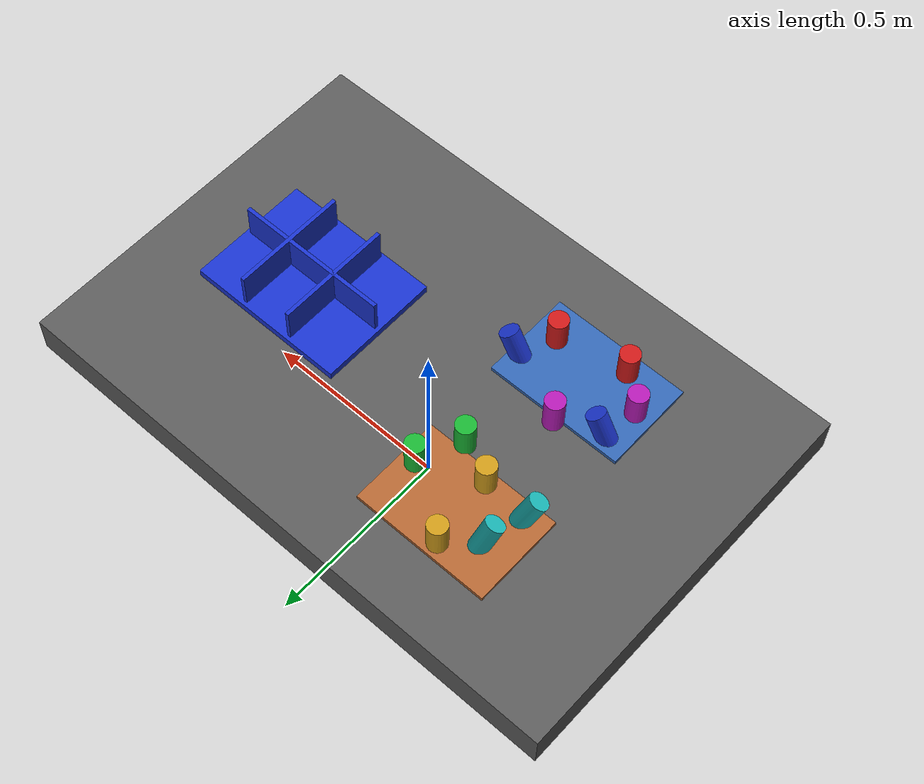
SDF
<?xml version="1.0" ?>
<sdf version="1.9">
  <!-- Standalone M1B scene.  The controller-backed Panda is spawned by the
       existing launch path; this file never alters the frozen M1A cube world. -->
  <world name="industrial_cylinder_v1">
    <physics name="bullet" type="bullet"><max_step_size>0.001</max_step_size><real_time_factor>1.0</real_time_factor></physics>
    <plugin name="gz::sim::systems::Physics" filename="gz-sim-physics-system"><engine><filename>gz-physics-bullet-featherstone-plugin</filename></engine></plugin>
    <plugin name="gz::sim::systems::UserCommands" filename="gz-sim-user-commands-system"/>
    <plugin name="gz::sim::systems::SceneBroadcaster" filename="gz-sim-scene-broadcaster-system"/>
    <plugin name="gz::sim::systems::Sensors" filename="gz-sim-sensors-system"><render_engine>ogre2</render_engine></plugin>
    <gravity>0 0 -9.81</gravity>
    <light type="directional" name="industrial_light"><pose>0 0 5 0 0 0</pose><direction>-0.3 0.2 -0.9</direction><diffuse>0.9 0.9 0.9 1</diffuse></light>
    <model name="industrial_work_table"><static>true</static><link name="link"><pose>0 0 0.4 0 0 0</pose><collision name="collision"><geometry><box><size>1.5 1.0 0.1</size></box></geometry></collision><visual name="visual"><geometry><box><size>1.5 1.0 0.1</size></box></geometry><material><diffuse>0.35 0.35 0.35 1</diffuse></material></visual></link></model>
    <model name="camera_fixture"><static>true</static><link name="camera_rgbd"><pose>-0.80 -0.80 1.40 0 0.77 0.93</pose><sensor name="front_rgbd" type="rgbd_camera"><always_on>1</always_on><update_rate>15</update_rate><topic>/xh/camera/rgbd</topic><camera><horizontal_fov>1.047</horizontal_fov><image><width>640</width><height>480</height><format>R8G8B8</format></image><clip><near>0.1</near><far>4.0</far></clip></camera></sensor></link></model>
    <model name="incoming_zone_a"><static>true</static><link name="link"><pose>-0.28 -0.22 0.455 0 0 0</pose><visual name="visual"><geometry><box><size>0.36 0.24 0.01</size></box></geometry><material><diffuse>0.2 0.4 0.7 1</diffuse></material></visual></link></model>
    <model name="incoming_zone_b"><static>true</static><link name="link"><pose>-0.28 0.22 0.455 0 0 0</pose><visual name="visual"><geometry><box><size>0.36 0.24 0.01</size></box></geometry><material><diffuse>0.7 0.4 0.2 1</diffuse></material></visual></link></model>
    <!-- M1B_RANDOM_PARTS_BEGIN -->
    <model name="cylinder_01"><pose>-0.3370 -0.2922 0.5000 0.0000 0.0000 -1.4329</pose><link name="link"><inertial><mass>0.06</mass></inertial><collision name="collision"><geometry><cylinder><radius>0.025</radius><length>0.09</length></cylinder></geometry></collision><visual name="visual"><geometry><cylinder><radius>0.025</radius><length>0.09</length></cylinder></geometry><material><diffuse>0.800 0.100 0.100 1</diffuse><specular>0.15 0.15 0.15 1</specular></material></visual></link></model>
    <model name="cylinder_02"><pose>-0.1379 0.1943 0.5000 3.1416 0.0000 -1.3285</pose><link name="link"><inertial><mass>0.06</mass></inertial><collision name="collision"><geometry><cylinder><radius>0.025</radius><length>0.09</length></cylinder></geometry></collision><visual name="visual"><geometry><cylinder><radius>0.025</radius><length>0.09</length></cylinder></geometry><material><diffuse>0.100 0.700 0.200 1</diffuse><specular>0.15 0.15 0.15 1</specular></material></visual></link></model>
    <model name="cylinder_03"><pose>-0.3916 -0.1362 0.4800 0.4500 -0.3000 2.0916</pose><link name="link"><inertial><mass>0.06</mass></inertial><collision name="collision"><geometry><cylinder><radius>0.025</radius><length>0.09</length></cylinder></geometry></collision><visual name="visual"><geometry><cylinder><radius>0.025</radius><length>0.09</length></cylinder></geometry><material><diffuse>0.100 0.200 0.800 1</diffuse><specular>0.15 0.15 0.15 1</specular></material></visual></link></model>
    <model name="cylinder_04"><pose>-0.2863 0.1307 0.5000 0.0000 0.0000 2.3255</pose><link name="link"><inertial><mass>0.06</mass></inertial><collision name="collision"><geometry><cylinder><radius>0.025</radius><length>0.09</length></cylinder></geometry></collision><visual name="visual"><geometry><cylinder><radius>0.025</radius><length>0.09</length></cylinder></geometry><material><diffuse>0.800 0.600 0.100 1</diffuse><specular>0.15 0.15 0.15 1</specular></material></visual></link></model>
    <model name="cylinder_05"><pose>-0.2914 -0.0892 0.5000 3.1416 0.0000 -0.8329</pose><link name="link"><inertial><mass>0.06</mass></inertial><collision name="collision"><geometry><cylinder><radius>0.025</radius><length>0.09</length></cylinder></geometry></collision><visual name="visual"><geometry><cylinder><radius>0.025</radius><length>0.09</length></cylinder></geometry><material><diffuse>0.700 0.100 0.700 1</diffuse><specular>0.15 0.15 0.15 1</specular></material></visual></link></model>
    <model name="cylinder_06"><pose>-0.3770 0.2347 0.4800 0.4500 -0.3000 0.2287</pose><link name="link"><inertial><mass>0.06</mass></inertial><collision name="collision"><geometry><cylinder><radius>0.025</radius><length>0.09</length></cylinder></geometry></collision><visual name="visual"><geometry><cylinder><radius>0.025</radius><length>0.09</length></cylinder></geometry><material><diffuse>0.100 0.700 0.700 1</diffuse><specular>0.15 0.15 0.15 1</specular></material></visual></link></model>
    <model name="cylinder_07"><pose>-0.1617 -0.2551 0.5000 0.0000 0.0000 -1.1343</pose><link name="link"><inertial><mass>0.06</mass></inertial><collision name="collision"><geometry><cylinder><radius>0.025</radius><length>0.09</length></cylinder></geometry></collision><visual name="visual"><geometry><cylinder><radius>0.025</radius><length>0.09</length></cylinder></geometry><material><diffuse>0.800 0.100 0.100 1</diffuse><specular>0.15 0.15 0.15 1</specular></material></visual></link></model>
    <model name="cylinder_08"><pose>-0.1875 0.0867 0.5000 3.1416 0.0000 -1.4664</pose><link name="link"><inertial><mass>0.06</mass></inertial><collision name="collision"><geometry><cylinder><radius>0.025</radius><length>0.09</length></cylinder></geometry></collision><visual name="visual"><geometry><cylinder><radius>0.025</radius><length>0.09</length></cylinder></geometry><material><diffuse>0.100 0.700 0.200 1</diffuse><specular>0.15 0.15 0.15 1</specular></material></visual></link></model>
    <model name="cylinder_09"><pose>-0.1108 -0.1714 0.4800 0.4500 -0.3000 2.0998</pose><link name="link"><inertial><mass>0.06</mass></inertial><collision name="collision"><geometry><cylinder><radius>0.025</radius><length>0.09</length></cylinder></geometry></collision><visual name="visual"><geometry><cylinder><radius>0.025</radius><length>0.09</length></cylinder></geometry><material><diffuse>0.100 0.200 0.800 1</diffuse><specular>0.15 0.15 0.15 1</specular></material></visual></link></model>
    <model name="cylinder_10"><pose>-0.3038 0.3063 0.5000 0.0000 0.0000 -0.2780</pose><link name="link"><inertial><mass>0.06</mass></inertial><collision name="collision"><geometry><cylinder><radius>0.025</radius><length>0.09</length></cylinder></geometry></collision><visual name="visual"><geometry><cylinder><radius>0.025</radius><length>0.09</length></cylinder></geometry><material><diffuse>0.800 0.600 0.100 1</diffuse><specular>0.15 0.15 0.15 1</specular></material></visual></link></model>
    <model name="cylinder_11"><pose>-0.4148 -0.2247 0.5000 3.1416 0.0000 2.3654</pose><link name="link"><inertial><mass>0.06</mass></inertial><collision name="collision"><geometry><cylinder><radius>0.025</radius><length>0.09</length></cylinder></geometry></collision><visual name="visual"><geometry><cylinder><radius>0.025</radius><length>0.09</length></cylinder></geometry><material><diffuse>0.700 0.100 0.700 1</diffuse><specular>0.15 0.15 0.15 1</specular></material></visual></link></model>
    <model name="cylinder_12"><pose>-0.4060 0.1303 0.4800 0.4500 -0.3000 0.0157</pose><link name="link"><inertial><mass>0.06</mass></inertial><collision name="collision"><geometry><cylinder><radius>0.025</radius><length>0.09</length></cylinder></geometry></collision><visual name="visual"><geometry><cylinder><radius>0.025</radius><length>0.09</length></cylinder></geometry><material><diffuse>0.100 0.700 0.700 1</diffuse><specular>0.15 0.15 0.15 1</specular></material></visual></link></model>
    <!-- M1B_RANDOM_PARTS_END -->
    <model name="blue_partition_bin"><static>true</static><pose>0.36 0 0.45 0 0 0</pose><link name="link"><collision name="floor"><pose>0 0 0.01 0 0 0</pose><geometry><box><size>0.42 0.32 0.02</size></box></geometry></collision><visual name="floor_visual"><pose>0 0 0.01 0 0 0</pose><geometry><box><size>0.42 0.32 0.02</size></box></geometry><material><diffuse>0.1 0.2 0.8 1</diffuse></material></visual><visual name="row_divider"><pose>0 0 0.06 0 0 0</pose><geometry><box><size>0.40 0.01 0.10</size></box></geometry><material><diffuse>0.1 0.2 0.8 1</diffuse></material></visual><visual name="col_divider_a"><pose>-0.07 0 0.06 0 0 0</pose><geometry><box><size>0.01 0.30 0.10</size></box></geometry><material><diffuse>0.1 0.2 0.8 1</diffuse></material></visual><visual name="col_divider_b"><pose>0.07 0 0.06 0 0 0</pose><geometry><box><size>0.01 0.30 0.10</size></box></geometry><material><diffuse>0.1 0.2 0.8 1</diffuse></material></visual></link></model>
    <!-- Reserved only: second table, bin transport corridor, stackable-bin
         collision volume, and second arm mounting namespace. -->
  </world>
</sdf>
